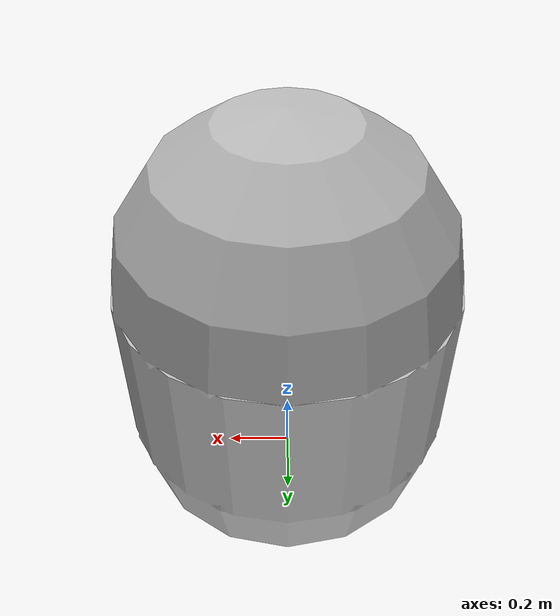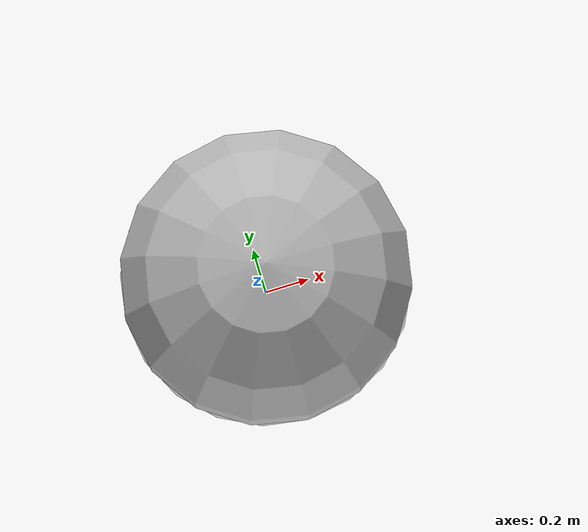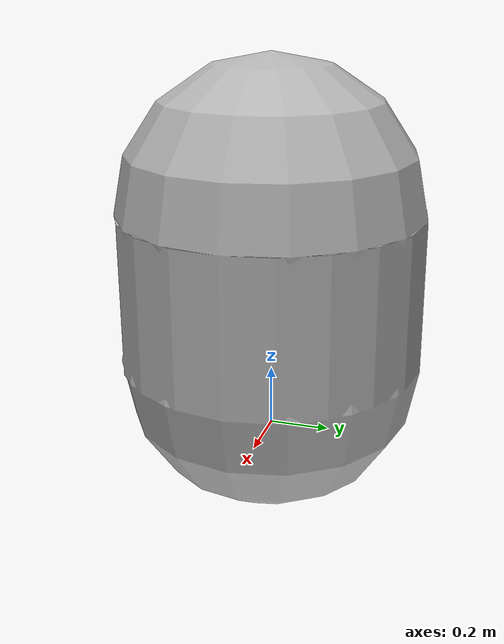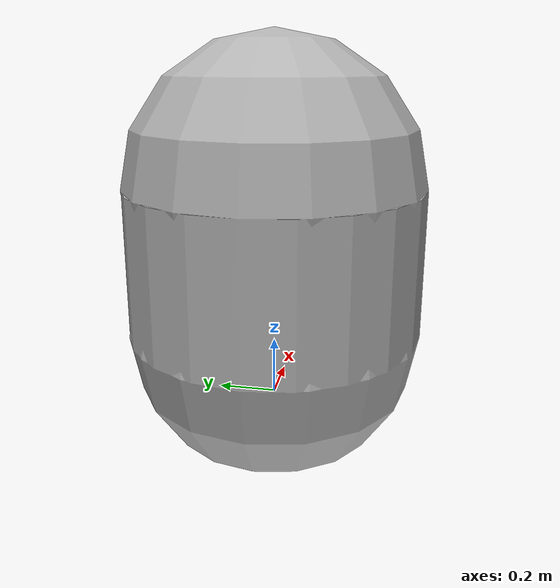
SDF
<?xml version='1.0'?>
<sdf version="1.7">
  <model name="capsule">
    <pose>0 0 0.5 0 0 0</pose>
    <link name="capsule_link">

      <inertial>
        <mass>1.0</mass>
        <inertia> <!-- inertias are tricky to compute -->
          <ixx>0.00483</ixx>       <!-- for a box: ixx = 0.083 * mass * (y*y + z*z) -->
          <ixy>0.0</ixy>         <!-- for a box: ixy = 0 -->
          <ixz>0.0</ixz>         <!-- for a box: ixz = 0 -->
          <iyy>0.00483</iyy>       <!-- for a box: iyy = 0.083 * mass * (x*x + z*z) -->
          <iyz>0.0</iyz>         <!-- for a box: iyz = 0 -->
          <izz>0.00483</izz>       <!-- for a box: izz = 0.083 * mass * (x*x + y*y) -->
        </inertia>
      </inertial>

      <collision name="collision">
        <geometry>
          <capsule>
            <radius>0.5</radius>
            <length>0.5</length>
          </capsule>
        </geometry>
      </collision>

      <visual name="visual">
        <geometry>
          <capsule>
            <radius>0.5</radius>
            <length>0.5</length>
          </capsule>
        </geometry>
      </visual>
    </link>
  </model>
</sdf>
